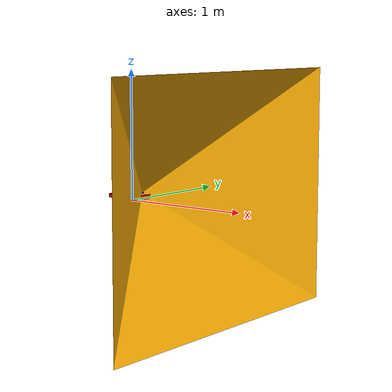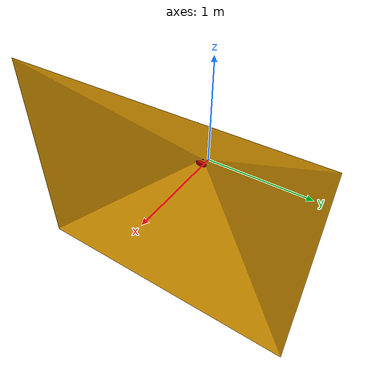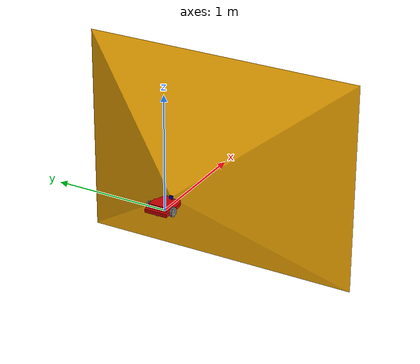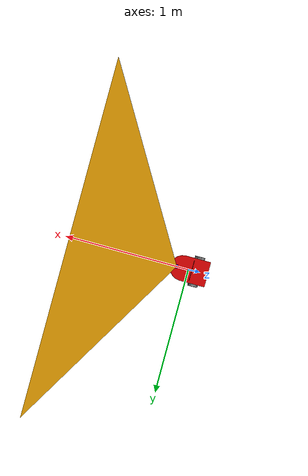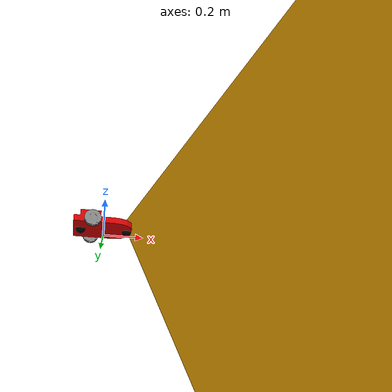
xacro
<?xml version="1.0"?>
<robot name="unicycle" xmlns:xacro="http://ros.org/wiki/xacro">

<!-- Name of the robot, used for the namespace of its Gazebo topics -->
<xacro:arg name="robot_name" default="robot0" />
<xacro:property name="robot_name" value="$(arg robot_name)" />
<!-- Frame rate of the camera, it can be lowered when Gazebo renders without a GPU -->
<xacro:arg name="camera_rate" default="10" />

<!-- Defining the colors used in this robot -->
<material name="Black">
<color rgba="0.0 0.0 0.0 1.0"/>
</material>

<material name="Red">
<color rgba="0.8 0.0 0.0 1.0"/>
</material>

<material name="White">
<color rgba="1.0 1.0 1.0 1.0"/>
</material>

<material name="Blue">
<color rgba="0.0 0.0 0.8 1.0"/>
</material>

<material name="Grey">
<color rgba="0.5 0.5 0.5 1.0"/>
</material>

<!-- PROPERTY LIST -->
<!--All units in m-kg-s-radians unit system -->
<xacro:property name="M_PI" value="3.1415926535897931" />
<xacro:property name="M_PI_2" value="1.570796327" />
<xacro:property name="DEG_TO_RAD" value="0.017453293" />

<!-- Main body dimensions and mass -->
<xacro:property name="base_mass" value="5.0" />  <!-- kg -->
<xacro:property name="base_length" value="0.30" />
<xacro:property name="base_width" value="0.20" />
<xacro:property name="base_height" value="0.03" />

<!-- Front caster wheel mass, height and radius -->
<xacro:property name="caster_f_mass" value="0.5" />
<xacro:property name="caster_f_height" value="0.04" />
<xacro:property name="caster_f_radius" value="0.025" />

<!-- Back caster wheel mass, height and radius -->
<xacro:property name="caster_b_mass" value="0.5" /> <!-- in kg-->
<xacro:property name="caster_b_height" value="0.04" />
<xacro:property name="caster_b_radius" value="0.025" />

<!-- Wheels -->
<xacro:property name="wheel_radius" value="0.04" />
<xacro:property name="wheel_height" value="0.02" />
<xacro:property name="wheel_mass" value="2.5" />      <!--[kg]-->

<xacro:property name="base_x_origin_to_wheel_origin" value="0.06" />
<xacro:property name="base_y_origin_to_wheel_origin" value="0.22" />   <!-- base_width + wheel_height -->
<xacro:property name="base_z_origin_to_wheel_origin" value="0.0" />

<!-- Macro for calculating inertia of cylinder -->
<xacro:macro name="cylinder_inertia" params="m r h">
    <inertia  ixx="${m*(3*r*r+h*h)/12}" ixy = "0" ixz = "0"
                iyy="${m*(3*r*r+h*h)/12}" iyz = "0"
                izz="${m*r*r/2}" />
</xacro:macro>

<!-- Macro for calculating inertia of box -->
<xacro:macro name="box_inertia" params="m w d h">
    <inertia ixx="${1/12*m*(h*h + d*d)}" ixy = "0" ixz = "0"
                iyy="${1/12*m*(w*w + d*d)}" iyz = "0"
                izz="${1/12*m*(w*w + h*h)}" />
</xacro:macro>

<!-- BASE-GROUND -->
<!-- Center of main box projected to groudn -->
<link name="base_ground">
    <inertial>
        <mass value="0.0001" />
        <origin xyz="0 0 0" />
        <inertia ixx="0.0001" ixy="0.0" ixz="0.0"
            iyy="0.0001" iyz="0.0"
            izz="0.0001" />
    </inertial>

    <visual>
        <origin xyz="0 0 0" rpy="0 0 0" />
        <geometry>
            <box size="0.001 0.001 0.001" />
        </geometry>
    </visual>
</link>

<gazebo reference="base_ground">
</gazebo>

<joint name="base_ground_joint" type="fixed">
    <origin xyz="0 0 ${wheel_radius - base_z_origin_to_wheel_origin}" rpy="0 0 0" />
    <parent link="base_ground"/>
    <child link="base_link" />
</joint>

<!-- MAIN BODY, base_link -->

<link name="base_link">
    <inertial>
        <mass value="${base_mass}" />
        <origin xyz="0 0 0" />
        <inertia ixx="0.0001" ixy="0.0" ixz="0.0"
            iyy="0.0001" iyz="0.0"
            izz="0.0001" />
        <box_inertia  m="${base_mass}" w="${base_width}" l = "${base_length}" h="${base_height}" />
    </inertial>

    <visual>
        <origin xyz="0 0 0" rpy="0 0 0" />
        <geometry>
            <mesh filename="package://dist_project/mesh/base.stl" scale="0.01 0.01 0.01" />
        </geometry>
        <material name="Red" />
    </visual>

    <collision>
        <origin xyz="0 0 ${wheel_radius - base_z_origin_to_wheel_origin - 0.019}" rpy="0 0 0 " /> <!-- -0.019 added since tinkercad is not precise -->
        <geometry>
            <box size="${base_length} ${base_width} ${base_height + 0.04}" />
        </geometry>
    </collision>
</link>

<gazebo reference="base_link">
</gazebo>

<link name="caster_front_link">
    <visual>
        <origin xyz="0 0.02 0" rpy="${M_PI/2} 0 0" />
        <geometry>
                <sphere radius="${caster_f_radius}" />
        </geometry>
        <material name="Black" />
    </visual>

    <collision>
        <geometry>
            <sphere radius="${caster_f_radius}" />
        </geometry>
        <origin xyz="0 0.02 0" rpy="${M_PI/2} 0 0" />
    </collision>

    <inertial>
        <mass value="${caster_f_mass}" />
        <origin xyz="0 0 0" />
        <inertia ixx="0.001" ixy="0.0" ixz="0.0"
                iyy="0.001" iyz="0.0"
                izz="0.001" />
    </inertial>
</link>

<joint name="caster_front_joint" type="fixed">
    <parent link="base_link"/>
    <child link="caster_front_link"/>
    <origin xyz="0.115 0.0 0.007" rpy="${-M_PI/2} 0 0"/>
</joint>

<gazebo reference="caster_front_link">
    <mu1 value="0.000001"/>
    <mu2 value="0.000001"/>
</gazebo>

<link name="caster_back_link">
    <visual>
        <origin xyz="0.02 0.02 0 " rpy="${M_PI/2} 0 0" />
        <geometry>
            <sphere radius="${caster_b_radius}" />
        </geometry>
        <material name="Black" />
    </visual>

    <collision>
        <geometry>
            <sphere radius="${caster_b_radius}" />
        </geometry>
        <origin xyz="0.02 0.02 0 " rpy="${M_PI/2} 0 0" />
    </collision>

    <inertial>
        <mass value="${caster_b_mass}" />
        <origin xyz="0 0 0" />
        <inertia ixx="0.001" ixy="0.0" ixz="0.0"
                iyy="0.001" iyz="0.0"
                izz="0.001" />
    </inertial>
</link>

<joint name="caster_back_joint" type="fixed">
    <parent link="base_link"/>
    <child link="caster_back_link"/>
    <origin xyz="-0.135 0.0 0.009" rpy="${-M_PI/2} 0 0"/>
</joint>

<gazebo reference="caster_back_link">
    <mu1 value="0.000001"/>
    <mu2 value="0.000001"/>
</gazebo>

<!-- RIGHT WHEEL DEFINITION -->

<link name="front_right_wheel">
    <visual>
    <origin xyz="0 0 0" rpy="${M_PI/2} 0  0 " />
    <geometry>
        <mesh filename="package://dist_project/mesh/wheel.stl" scale="0.001 0.001 0.001" />
    </geometry>
    <material name="Grey" />
    </visual>

    <collision>
    <origin xyz="0 0 0" rpy="${M_PI/2} 0 0 " />
    <geometry>
        <cylinder length="${wheel_height}" radius="${wheel_radius}" />
    </geometry>
    </collision>

    <inertial>
    <mass value="${wheel_mass}" />
    <origin xyz="0 0 0" />
            <inertia ixx="0.001" ixy="0.0" ixz="0.0"
            iyy="0.001" iyz="0.0"
            izz="0.001" />
    </inertial>
</link>

<!-- Physic parameters for Gazebo -->
<gazebo reference="front_right_wheel">
    <mu1 value="1.0"/>
    <mu2 value="1.0"/>
    <kp  value="10000000.0"/>
    <kd  value="1.0" />
    <fdir1 value="1 0 0"/>
</gazebo>

<joint name="front_right_wheel_joint" type="continuous">
    <parent link="base_link"/>
    <child link="front_right_wheel"/>
    <origin xyz="${-1 * base_x_origin_to_wheel_origin} ${-0.5 * base_y_origin_to_wheel_origin} ${base_z_origin_to_wheel_origin}" rpy="0 0 0" />
    <axis xyz="0 1 0" rpy="0 0 0" />
    <limit effort="100" velocity="100"/>
    <joint_properties damping="0.0" friction="0.0"/>
</joint>

<!-- Transmission: to link joint and controller -->
<transmission name="front_right_wheel_joint_trans">
    <type>transmission_interface/SimpleTransmission</type>
    <joint name="front_right_wheel_joint" />

    <!-- Define Actuation type-->
    <actuator name="front_right_wheel_joint_motor">
    <hardwareInterface>EffortJointInterface</hardwareInterface>
    <mechanicalReduction>1</mechanicalReduction>
    </actuator>
</transmission>

<!-- LEFT WHEEL DEFINITION -->

<link name="front_left_wheel">
    <visual>
    <origin xyz="0 0 0" rpy="${M_PI/2} 0  0 " />
    <geometry>
        <mesh filename="package://dist_project/mesh/wheel.stl" scale="0.001 0.001 0.001" />
    </geometry>
    <material name="Grey" />
    </visual>

    <collision>
    <origin xyz="0 0 0" rpy="${M_PI/2} 0 0 " />
    <geometry>
        <cylinder length="${wheel_height}" radius="${wheel_radius}" />
    </geometry>
    </collision>

    <inertial>
    <mass value="${wheel_mass}" />
    <origin xyz="0 0 0" />
            <inertia ixx="0.001" ixy="0.0" ixz="0.0"
            iyy="0.001" iyz="0.0"
            izz="0.001" />
    </inertial>
</link>

<!-- Physic parameters for Gazebo -->
<gazebo reference="front_left_wheel">
    <mu1 value="1.0"/>
    <mu2 value="1.0"/>
    <kp  value="10000000.0"/>
    <kd  value="1.0" />
    <fdir1 value="1 0 0"/>
</gazebo>

<joint name="front_left_wheel_joint" type="continuous">
    <parent link="base_link"/>
    <child link="front_left_wheel"/>
    <origin xyz="${-1 * base_x_origin_to_wheel_origin} ${0.5 * base_y_origin_to_wheel_origin} ${base_z_origin_to_wheel_origin}" rpy="0 0 0" />
    <axis xyz="0 1 0" rpy="0 0 0" />
    <limit effort="100" velocity="100"/>
    <joint_properties damping="0.0" friction="0.0"/>
</joint>

<!-- Transmission: to link joint and controller -->
<transmission name="front_left_wheel_joint_trans">
    <type>transmission_interface/SimpleTransmission</type>
    <joint name="front_left_wheel_joint" />

    <!-- Define Actuation type-->
    <actuator name="front_left_wheel_joint_motor">
    <hardwareInterface>EffortJointInterface</hardwareInterface>
    <mechanicalReduction>1</mechanicalReduction>
    </actuator>
</transmission>

<!-- CAMERA DEFINITION -->

<link name="camera_link">
    <visual>
        <origin xyz="0 0 0" rpy="0 0 0" />
        <geometry>
            <box size="0.01 0.03 0.03" />
        </geometry>
        <material name="Blue" />
    </visual>
</link>

<joint name="camera_optical_joint" type="fixed">
    <parent link="camera_link" />
    <child link="camera_optical_link" />
    <origin xyz="0 0 0" rpy="${-pi/2} 0 ${-pi/2}" />
</joint>

<link name="camera_optical_link"></link>

<joint name="camera_joint" type="fixed">
    <parent link="base_link"/>
    <child link="camera_link"/>
    <origin xyz="0.1 0 ${base_height/2 + 0.015}" rpy="0 0 0"/>
</joint>

<gazebo reference="camera_link">

    <sensor name="camera" type="camera">
        <pose> 0 0 0 0 0 0 </pose>
        <always_on>true</always_on>
        <topic>/${robot_name}/camera/image_raw</topic>
        <visualize>true</visualize>
        <update_rate>$(arg camera_rate)</update_rate>
        <camera>
            <horizontal_fov>2</horizontal_fov>
            <visibility_mask>1</visibility_mask>
            <image>
                <format>R8G8B8</format>
                <width>640</width>
                <height>480</height>
            </image>
            <clip>
                <near>0.05</near>
                <far>15.00</far>
            </clip>
            <noise>
                <type>gaussian</type>
                <mean>0.0</mean>
                <stddev>0.07</stddev>
            </noise>
        </camera>
    </sensor>
</gazebo>

<!-- Field of view of the camera, visible only in the Gazebo view -->
<link name="camera_fov_link">
    <visual>
        <origin xyz="0 0 0" rpy="0 0 0" />
        <geometry>
            <mesh filename="package://dist_project/mesh/camera_fov.stl" />
        </geometry>
    </visual>
</link>

<joint name="camera_fov_joint" type="fixed">
    <parent link="camera_link" />
    <child link="camera_fov_link" />
    <origin xyz="0 0 0" rpy="0 0 0" />
</joint>

<gazebo reference="camera_fov_link">
    <visual>
        <cast_shadows>false</cast_shadows>
        <transparency>0.8</transparency>
        <visibility_flags>2</visibility_flags>
        <material>
            <ambient>0.3 0.6 1 1</ambient>
            <diffuse>0.3 0.6 1 1</diffuse>
            <emissive>0.1 0.2 0.35 1</emissive>
        </material>
    </visual>
</gazebo>

<link name="camera_tip_link">
    <visual>
        <origin xyz="0 0 0" rpy="0 0 0" />
        <geometry>
            <box size="0.004 0.01 0.01" />
        </geometry>
        <material name="Blue" />
    </visual>
</link>

<joint name="camera_tip_joint" type="fixed">
    <parent link="camera_link"/>
    <child link="camera_tip_link"/>
    <origin xyz="${0.005+0.002} 0 0" rpy="0 0 0"/>
</joint>

<gazebo reference="camera_tip_link">
</gazebo>

<!-- Gazebo Plugins -->
<gazebo>
    <!-- Differential drive: velocity commands in and wheel odometry out -->
    <plugin filename="gz-sim-diff-drive-system" name="gz::sim::systems::DiffDrive">
        <left_joint>front_left_wheel_joint</left_joint>
        <right_joint>front_right_wheel_joint</right_joint>
        <wheel_separation>${base_width}</wheel_separation>
        <wheel_radius>${wheel_radius}</wheel_radius>
        <topic>/${robot_name}/cmd_vel</topic>
        <odom_topic>/${robot_name}/odom</odom_topic>
        <odom_publish_frequency>10</odom_publish_frequency>
        <frame_id>${robot_name}/odom</frame_id>
        <child_frame_id>${robot_name}/base_ground</child_frame_id>
    </plugin>
    <!-- Ground truth pose of the robot in the world frame -->
    <plugin filename="gz-sim-odometry-publisher-system" name="gz::sim::systems::OdometryPublisher">
        <odom_frame>world</odom_frame>
        <robot_base_frame>${robot_name}/base_ground</robot_base_frame>
        <odom_topic>/${robot_name}/ground_truth/state</odom_topic>
        <odom_publish_frequency>10</odom_publish_frequency>
        <dimensions>3</dimensions>
    </plugin>
</gazebo>

</robot>
